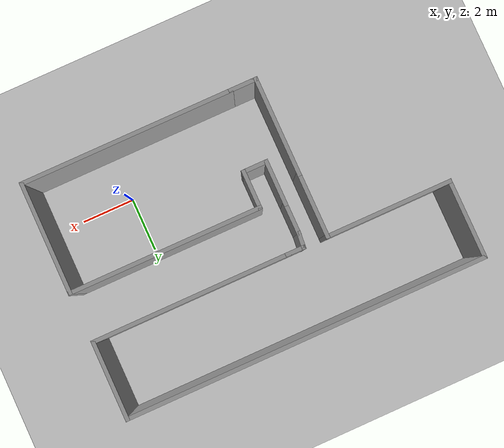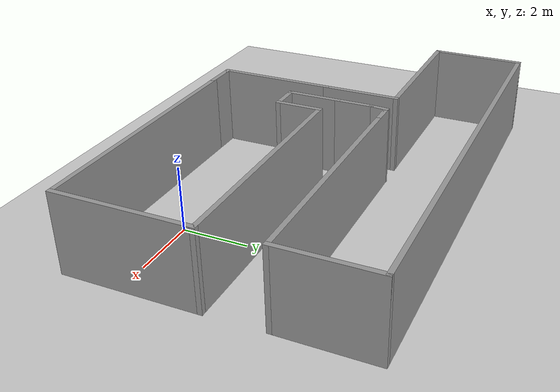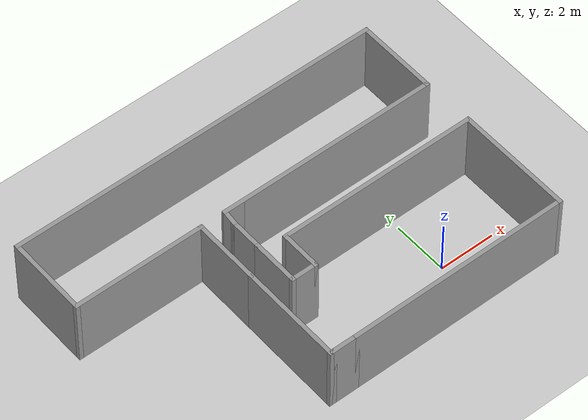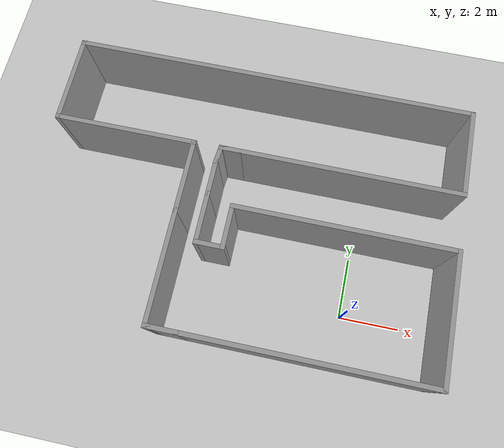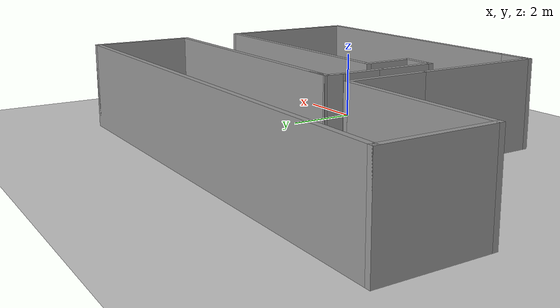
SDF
<sdf version="1.7">
 <world name="default">
  <light name="sun" type="directional">
   <pose>0 0 10 0 -0 0</pose>
   <diffuse>0.8 0.8 0.8 1</diffuse>
   <specular>0.2 0.2 0.2 1</specular>
   <attenuation>
    <range>1000</range>
    <constant>0.9</constant>
    <linear>0.01</linear>
    <quadratic>0.001</quadratic>
   </attenuation>
   <direction>-0.5 0.1 -0.9</direction>
   <spot><inner_angle>0</inner_angle><outer_angle>0</outer_angle><falloff>0</falloff></spot>
  </light>
  <model name="ground_plane">
   <static>1</static>
   <link name="link">
    <collision name="collision">
     <geometry><plane><normal>0 0 1</normal><size>100 100</size></plane></geometry>
     <surface>
      <contact><collide_bitmask>65535</collide_bitmask></contact>
      <friction><ode><mu>100</mu><mu2>50</mu2></ode></friction>
     </surface>
    </collision>
    <visual name="visual">
     <cast_shadows>0</cast_shadows>
     <geometry><plane><normal>0 0 1</normal><size>100 100</size></plane></geometry>
     <material>
      <script><uri>file://media/materials/scripts/gazebo.material</uri><name>Gazebo/Grey</name></script>
     </material>
    </visual>
   </link>
  </model>
  <gravity>0 0 -9.8</gravity>
  <magnetic_field>6e-06 2.3e-05 -4.2e-05</magnetic_field>
  <atmosphere type="adiabatic"/>
  <physics type="ode">
   <max_step_size>0.001</max_step_size>
   <real_time_factor>1</real_time_factor>
   <real_time_update_rate>1000</real_time_update_rate>
  </physics>
  <scene><ambient>0.4 0.4 0.4 1</ambient><background>0.7 0.7 0.7 1</background><shadows>1</shadows></scene>
  <spherical_coordinates>
   <surface_model>EARTH_WGS84</surface_model>
   <latitude_deg>0</latitude_deg>
   <longitude_deg>0</longitude_deg>
   <elevation>0</elevation>
   <heading_deg>0</heading_deg>
  </spherical_coordinates>
  <model name="more_thin">
   <pose>-3.686 2.68955 0 0 -0 0</pose>
   <link name="Wall_0">
    <collision name="Wall_0_Collision">
     <geometry><box><size>8 0.15 2.5</size></box></geometry>
     <pose>0 0 1.25 0 -0 0</pose>
    </collision>
    <visual name="Wall_0_Visual">
     <pose>0 0 1.25 0 -0 0</pose>
     <geometry><box><size>8 0.15 2.5</size></box></geometry>
     <material>
      <script><uri>file://media/materials/scripts/gazebo.material</uri><name>Gazebo/Grey</name></script>
      <ambient>1 1 1 1</ambient>
     </material>
     <meta><layer>0</layer></meta>
    </visual>
    <pose>2.775 -4.4 0 0 -0 0</pose>
   </link>
   <link name="Wall_1">
    <collision name="Wall_1_Collision">
     <geometry><box><size>4.25 0.15 2.5</size></box></geometry>
     <pose>0 0 1.25 0 -0 0</pose>
    </collision>
    <visual name="Wall_1_Visual">
     <pose>0 0 1.25 0 -0 0</pose>
     <geometry><box><size>4.25 0.15 2.5</size></box></geometry>
     <material>
      <script><uri>file://media/materials/scripts/gazebo.material</uri><name>Gazebo/Grey</name></script>
      <ambient>1 1 1 1</ambient>
     </material>
     <meta><layer>0</layer></meta>
    </visual>
    <pose>6.7 -2.35 0 0 -0 1.5708</pose>
   </link>
   <link name="Wall_10">
    <collision name="Wall_10_Collision">
     <geometry><box><size>3.75 0.15 2.5</size></box></geometry>
     <pose>0 0 1.25 0 -0 0</pose>
    </collision>
    <visual name="Wall_10_Visual">
     <pose>0 0 1.25 0 -0 0</pose>
     <geometry><box><size>3.75 0.15 2.5</size></box></geometry>
     <material>
      <script><uri>file://media/materials/scripts/gazebo.material</uri><name>Gazebo/Grey</name></script>
      <ambient>1 1 1 1</ambient>
     </material>
     <meta><layer>0</layer></meta>
    </visual>
    <pose>-2.1 -2.6 0 0 -0 1.5708</pose>
   </link>
   <link name="Wall_12">
    <collision name="Wall_12_Collision">
     <geometry><box><size>2.5 0.15 2.5</size></box></geometry>
     <pose>0 0 1.25 0 -0 0</pose>
    </collision>
    <visual name="Wall_12_Visual">
     <pose>0 0 1.25 0 -0 0</pose>
     <geometry><box><size>2.5 0.15 2.5</size></box></geometry>
     <material>
      <script><uri>file://media/materials/scripts/gazebo.material</uri><name>Gazebo/Grey</name></script>
      <ambient>1 1 1 1</ambient>
     </material>
     <meta><layer>0</layer></meta>
    </visual>
    <pose>-2.1 0.375 0 0 -0 1.5708</pose>
   </link>
   <link name="Wall_13">
    <collision name="Wall_13_Collision">
     <geometry><box><size>4.75 0.15 2.5</size></box></geometry>
     <pose>0 0 1.25 0 -0 0</pose>
    </collision>
    <visual name="Wall_13_Visual">
     <pose>0 0 1.25 0 -0 0</pose>
     <geometry><box><size>4.75 0.15 2.5</size></box></geometry>
     <material>
      <script><uri>file://media/materials/scripts/gazebo.material</uri><name>Gazebo/Grey</name></script>
      <ambient>1 1 1 1</ambient>
     </material>
     <meta><layer>0</layer></meta>
    </visual>
    <pose>-4.4 1.55 0 0 -0 3.14159</pose>
   </link>
   <link name="Wall_14">
    <collision name="Wall_14_Collision">
     <geometry><box><size>3 0.15 2.5</size></box></geometry>
     <pose>0 0 1.25 0 -0 0</pose>
    </collision>
    <visual name="Wall_14_Visual">
     <pose>0 0 1.25 0 -0 0</pose>
     <geometry><box><size>3 0.15 2.5</size></box></geometry>
     <material>
      <script><uri>file://media/materials/scripts/gazebo.material</uri><name>Gazebo/Grey</name></script>
      <ambient>1 1 1 1</ambient>
     </material>
     <meta><layer>0</layer></meta>
    </visual>
    <pose>-6.7 2.975 0 0 -0 1.5708</pose>
   </link>
   <link name="Wall_15">
    <collision name="Wall_15_Collision">
     <geometry><box><size>13.5 0.15 2.5</size></box></geometry>
     <pose>0 0 1.25 0 -0 0</pose>
    </collision>
    <visual name="Wall_15_Visual">
     <pose>0 0 1.25 0 -0 0</pose>
     <geometry><box><size>13.5 0.15 2.5</size></box></geometry>
     <material>
      <script><uri>file://media/materials/scripts/gazebo.material</uri><name>Gazebo/Grey</name></script>
      <ambient>1 1 1 1</ambient>
     </material>
     <meta><layer>0</layer></meta>
    </visual>
    <pose>-0.025 4.4 0 0 -0 0</pose>
   </link>
   <link name="Wall_16">
    <collision name="Wall_16_Collision">
     <geometry><box><size>3 0.15 2.5</size></box></geometry>
     <pose>0 0 1.25 0 -0 0</pose>
    </collision>
    <visual name="Wall_16_Visual">
     <pose>0 0 1.25 0 -0 0</pose>
     <geometry><box><size>3 0.15 2.5</size></box></geometry>
     <material>
      <script><uri>file://media/materials/scripts/gazebo.material</uri><name>Gazebo/Grey</name></script>
      <ambient>1 1 1 1</ambient>
     </material>
     <meta><layer>0</layer></meta>
    </visual>
    <pose>6.65 2.975 0 0 -0 -1.5708</pose>
   </link>
   <link name="Wall_17">
    <collision name="Wall_17_Collision">
     <geometry><box><size>8 0.15 2.5</size></box></geometry>
     <pose>0 0 1.25 0 -0 0</pose>
    </collision>
    <visual name="Wall_17_Visual">
     <pose>0 0 1.25 0 -0 0</pose>
     <geometry><box><size>8 0.15 2.5</size></box></geometry>
     <material>
      <script><uri>file://media/materials/scripts/gazebo.material</uri><name>Gazebo/Grey</name></script>
      <ambient>1 1 1 1</ambient>
     </material>
     <meta><layer>0</layer></meta>
    </visual>
    <pose>2.725 1.55 0 0 -0 3.14159</pose>
   </link>
   <link name="Wall_18">
    <collision name="Wall_18_Collision">
     <geometry><box><size>0.75 0.15 2.5</size></box></geometry>
     <pose>0 0 1.25 0 -0 0</pose>
    </collision>
    <visual name="Wall_18_Visual">
     <pose>0 0 1.25 0 -0 0</pose>
     <geometry><box><size>0.75 0.15 2.5</size></box></geometry>
     <material>
      <script><uri>file://media/materials/scripts/gazebo.material</uri><name>Gazebo/Grey</name></script>
      <ambient>1 1 1 1</ambient>
     </material>
     <meta><layer>0</layer></meta>
    </visual>
    <pose>-0.9 1.55 0 0 -0 0</pose>
   </link>
   <link name="Wall_2">
    <collision name="Wall_2_Collision">
     <geometry><box><size>7.25 0.15 2.5</size></box></geometry>
     <pose>0 0 1.25 0 -0 0</pose>
    </collision>
    <visual name="Wall_2_Visual">
     <pose>0 0 1.25 0 -0 0</pose>
     <geometry><box><size>7.25 0.15 2.5</size></box></geometry>
     <material>
      <script><uri>file://media/materials/scripts/gazebo.material</uri><name>Gazebo/Grey</name></script>
      <ambient>1 1 1 1</ambient>
     </material>
     <meta><layer>0</layer></meta>
    </visual>
    <pose>3.15 -0.3 0 0 -0 3.14159</pose>
   </link>
   <link name="Wall_20">
    <collision name="Wall_20_Collision">
     <geometry><box><size>1.25 0.15 2.5</size></box></geometry>
     <pose>0 0 1.25 0 -0 0</pose>
    </collision>
    <visual name="Wall_20_Visual">
     <pose>0 0 1.25 0 -0 0</pose>
     <geometry><box><size>1.25 0.15 2.5</size></box></geometry>
     <material>
      <script><uri>file://media/materials/scripts/gazebo.material</uri><name>Gazebo/Grey</name></script>
      <ambient>1 1 1 1</ambient>
     </material>
     <meta><layer>0</layer></meta>
    </visual>
    <pose>-1.25 0.5 0 0 -0 1.5708</pose>
   </link>
   <link name="Wall_25">
    <collision name="Wall_25_Collision">
     <geometry><box><size>0.15 0.15 2.5</size></box></geometry>
     <pose>0 0 1.25 0 -0 0</pose>
    </collision>
    <visual name="Wall_25_Visual">
     <pose>0 0 1.25 0 -0 0</pose>
     <geometry><box><size>0.15 0.15 2.5</size></box></geometry>
     <material>
      <script><uri>file://media/materials/scripts/gazebo.material</uri><name>Gazebo/Grey</name></script>
      <ambient>1 1 1 1</ambient>
     </material>
     <meta><layer>0</layer></meta>
    </visual>
    <pose>-1.2 1.55 0 0 -0 0</pose>
   </link>
   <link name="Wall_26">
    <collision name="Wall_26_Collision">
     <geometry><box><size>0.652494 0.15 2.5</size></box></geometry>
     <pose>0 0 1.25 0 -0 0</pose>
    </collision>
    <visual name="Wall_26_Visual">
     <pose>0 0 1.25 0 -0 0</pose>
     <geometry><box><size>0.652494 0.15 2.5</size></box></geometry>
     <material>
      <script><uri>file://media/materials/scripts/gazebo.material</uri><name>Gazebo/Grey</name></script>
      <ambient>1 1 1 1</ambient>
     </material>
     <meta><layer>0</layer></meta>
    </visual>
    <pose>-1.225 1.3 0 0 -0 -1.67047</pose>
   </link>
   <link name="Wall_3">
    <collision name="Wall_3_Collision">
     <geometry><box><size>1.5 0.15 2.5</size></box></geometry>
     <pose>0 0 1.25 0 -0 0</pose>
    </collision>
    <visual name="Wall_3_Visual">
     <pose>0 0 1.25 0 -0 0</pose>
     <geometry><box><size>1.5 0.15 2.5</size></box></geometry>
     <material>
      <script><uri>file://media/materials/scripts/gazebo.material</uri><name>Gazebo/Grey</name></script>
      <ambient>1 1 1 1</ambient>
     </material>
     <meta><layer>0</layer></meta>
    </visual>
    <pose>-0.4 -0.975 0 0 -0 -1.5708</pose>
   </link>
   <link name="Wall_4">
    <collision name="Wall_4_Collision">
     <geometry><box><size>1 0.15 2.5</size></box></geometry>
     <pose>0 0 1.25 0 -0 0</pose>
    </collision>
    <visual name="Wall_4_Visual">
     <pose>0 0 1.25 0 -0 0</pose>
     <geometry><box><size>1 0.15 2.5</size></box></geometry>
     <material>
      <script><uri>file://media/materials/scripts/gazebo.material</uri><name>Gazebo/Grey</name></script>
      <ambient>1 1 1 1</ambient>
     </material>
     <meta><layer>0</layer></meta>
    </visual>
    <pose>-0.825 -1.65 0 0 -0 3.14159</pose>
   </link>
   <link name="Wall_5">
    <collision name="Wall_5_Collision">
     <geometry><box><size>1.75 0.15 2.5</size></box></geometry>
     <pose>0 0 1.25 0 -0 0</pose>
    </collision>
    <visual name="Wall_5_Visual">
     <pose>0 0 1.25 0 -0 0</pose>
     <geometry><box><size>1.75 0.15 2.5</size></box></geometry>
     <material>
      <script><uri>file://media/materials/scripts/gazebo.material</uri><name>Gazebo/Grey</name></script>
      <ambient>1 1 1 1</ambient>
     </material>
     <meta><layer>0</layer></meta>
    </visual>
    <pose>-1.25 -0.85 0 0 -0 1.5708</pose>
   </link>
   <link name="Wall_7">
    <collision name="Wall_7_Collision">
     <geometry><box><size>1 0.15 2.5</size></box></geometry>
     <pose>0 0 1.25 0 -0 0</pose>
    </collision>
    <visual name="Wall_7_Visual">
     <pose>0 0 1.25 0 -0 0</pose>
     <geometry><box><size>1 0.15 2.5</size></box></geometry>
     <material>
      <script><uri>file://media/materials/scripts/gazebo.material</uri><name>Gazebo/Grey</name></script>
      <ambient>1 1 1 1</ambient>
     </material>
     <meta><layer>0</layer></meta>
    </visual>
    <pose>-1.575 -4.4 0 0 -0 3.14159</pose>
   </link>
   <link name="Wall_9">
    <collision name="Wall_9_Collision">
     <geometry><box><size>0.25 0.15 2.5</size></box></geometry>
     <pose>0 0 1.25 0 -0 0</pose>
    </collision>
    <visual name="Wall_9_Visual">
     <pose>0 0 1.25 0 -0 0</pose>
     <geometry><box><size>0.25 0.15 2.5</size></box></geometry>
     <material>
      <script><uri>file://media/materials/scripts/gazebo.material</uri><name>Gazebo/Grey</name></script>
      <ambient>1 1 1 1</ambient>
     </material>
     <meta><layer>0</layer></meta>
    </visual>
    <pose>-2.05 -4.4 0 0 -0 3.14159</pose>
   </link>
   <static>1</static>
  </model>
 </world>
</sdf>
